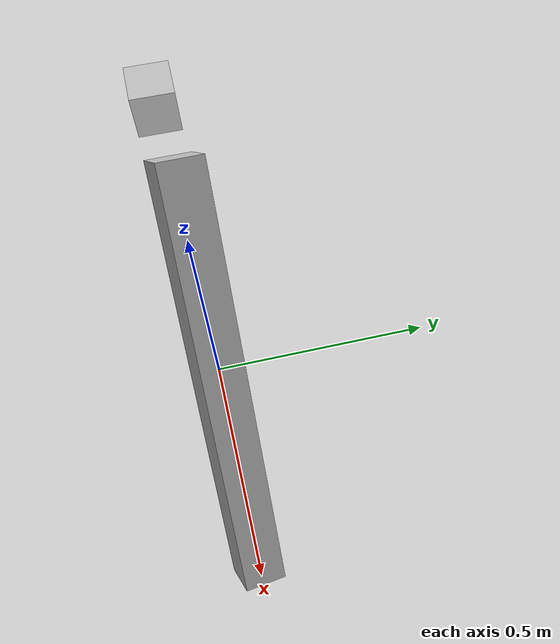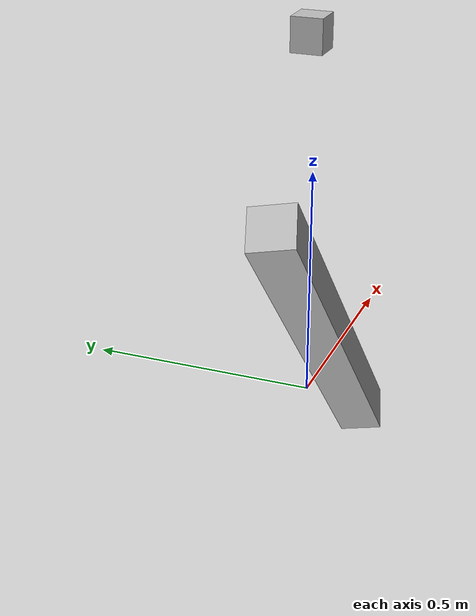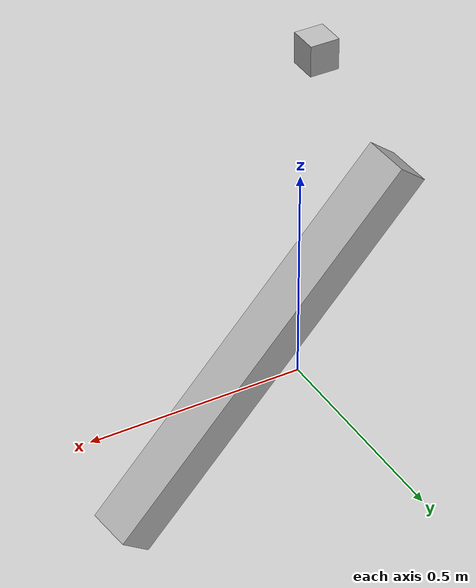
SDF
<?xml version="1.0"?>
<sdf version="1.6">
  <world name="default">
    <model name="test_block_laser">
      <pose>0 0 0.8 0.0 1.5707 0.0</pose>
      <static>true</static>
      <link name="link">
        <visual name="visual">
          <pose>0.007 0 -0.033 0 0 0</pose>
          <geometry>
            <box>
              <size>0.07 0.065 0.065</size>
            </box>
          </geometry>
        </visual>
        <collision name="collision">
          <geometry>
            <box>
              <size>0.07 0.065 0.065</size>
            </box>
          </geometry>
        </collision>
        <sensor name="laser_profiler" type="ray">
          <update_rate>5</update_rate>
          <pose>0 0 0.0 0 0 0</pose>
          <plugin name="proximity_ray_plugin" filename="libgazebo_ros_block_laser.so" >
            <robotNamespace>/</robotNamespace>
            <frameName>test_block_laser_frame</frameName>
            <topicName>test_block_laser</topicName>
            <alwaysOn>true</alwaysOn>
          </plugin>
          <ray>
            <range>
              <min>0.4</min>
              <max>1.0</max>
              <resolution>0.001</resolution>
            </range>
            <scan>
              <horizontal>
                <samples>50</samples>
                <resolution>1</resolution>
                <min_angle>-0.3</min_angle>
                <max_angle>0.3</max_angle>
              </horizontal>
              <vertical>
                <samples>50</samples>
                <resolution>1</resolution>
                <min_angle>-0.4</min_angle>
                <max_angle>0.4</max_angle>
              </vertical>
            </scan>
            <noise>
              <type>gaussian</type>
              <mean>0.0</mean>
              <stddev>0.001</stddev>
            </noise>
          </ray>

          <always_on>1</always_on>
          <visualize>True</visualize>
        </sensor>
        <gravity>false</gravity>
        <inertial>
          <mass>0.1</mass>
        </inertial>
      </link>
    </model>

    <model name="slope">
      <static>true</static>
      <pose>0.0991 -0.002 0.0909 -0.254819 0.847737 -0.021658</pose>
      <link name="link">
        <visual name="visual">
          <geometry>
            <box>
              <size>1 0.1 0.1</size>
            </box>
          </geometry>
        </visual>
        <collision name="collision">
          <geometry>
            <box>
              <size>1 0.1 0.1</size>
            </box>
          </geometry>
        </collision>
      </link>
    </model>
  </world>
</sdf>
